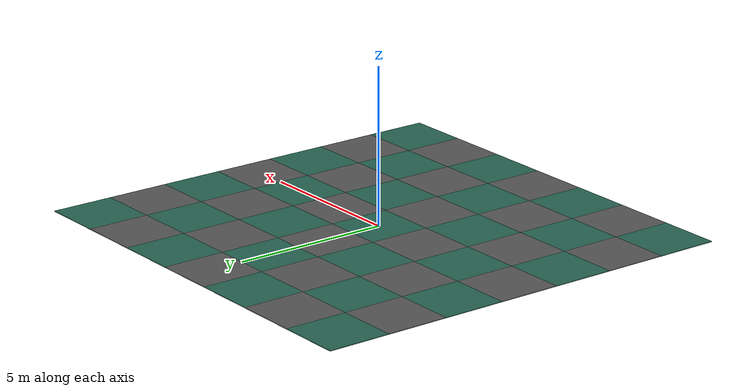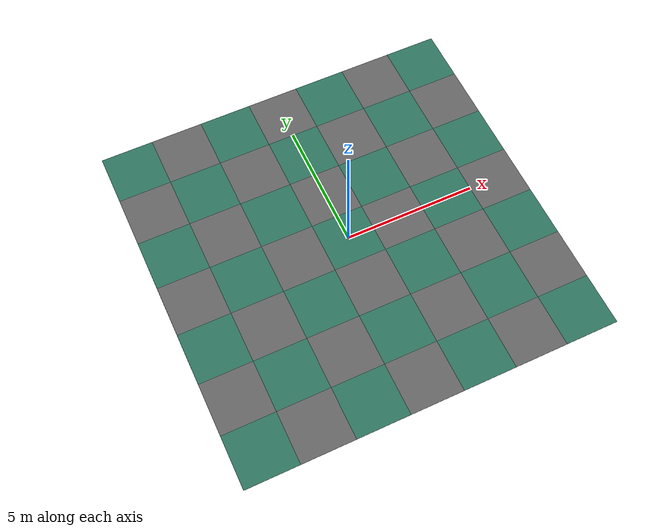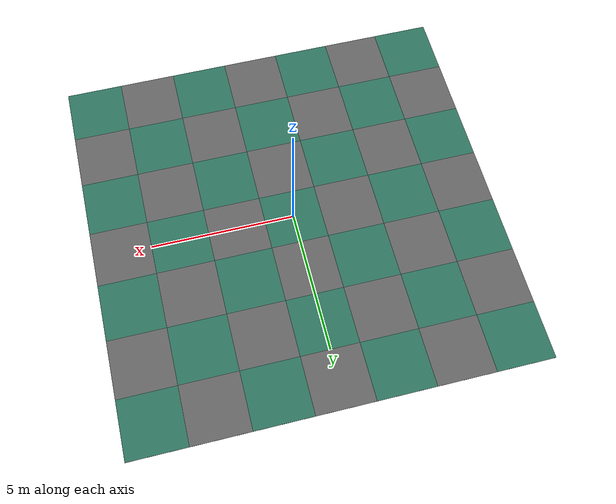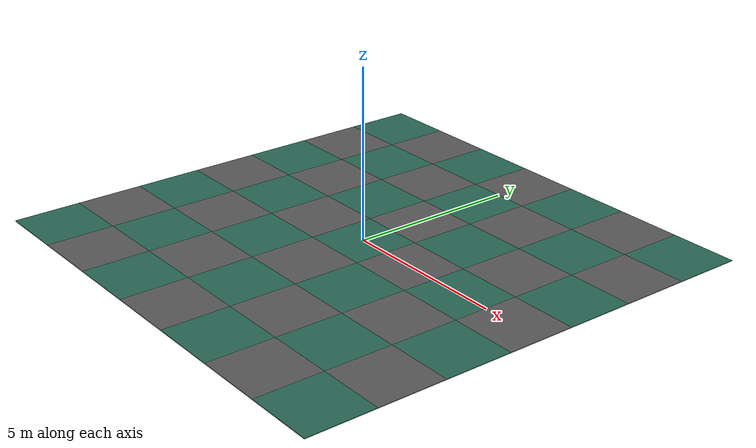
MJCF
<mujoco model="friction_floor_1">
  <compiler angle="radian" />
  <asset>
    <texture name='a' builtin="gradient" height="100" rgb1="1 1 1" rgb2="0 0 0" type="skybox" width="100"/>
    <texture name="texplane0" type="2d" builtin="checker" rgb1="0.14 0.83 0.43" rgb2="0.23 0.09 0.33" width="100" height="100" mark="cross" markrgb=".8 .8 .8"/>
    <texture name="texplane1" type="2d" builtin="checker" rgb1="0 0 0" rgb2="0.8 0.8 0.8" width="100" height="100" mark="cross" markrgb=".8 .8 .8"/>
    <material name="matplane0" reflectance="0.3" texture="texplane0" texrepeat="3 3" texuniform="true"/>
    <material name="matplane1" reflectance="0.3" texture="texplane1" texrepeat="3 3" texuniform="true"/>
  </asset>
  <visual>
    <headlight ambient="0.6 0.6 0.6" diffuse="0.5 0.5 0.5" specular="0.2 0.2 0.2"/>
    <map znear="0.001" />
  </visual>
  <worldbody>
  	<!-- Floor XY -->
    <geom contype="1" friction="1 0 0.001" name="floor+0+0" pos="0 0 0" euler="0 0 0" size="1 1 0.01" type="box" material="matplane0" condim="6"/>

    <geom contype="1" friction="1 0 0.02" name="floor+2+0" pos="2 0 0" euler="0 0 0" size="1 1 0.01" type="box" material="matplane1" condim="6"/>
    <geom contype="1" friction="1 0 0.001" name="floor+2+2" pos="2 2 0" euler="0 0 0" size="1 1 0.01" type="box" material="matplane0" condim="6"/>
    <geom contype="1" friction="1 0 0.02" name="floor+0+2" pos="0 2 0" euler="0 0 0" size="1 1 0.01" type="box" material="matplane1" condim="6"/>
    <geom contype="1" friction="1 0 0.001" name="floor-2-2" pos="-2 -2 0" euler="0 0 0" size="1 1 0.01" type="box" material="matplane0" condim="6"/>
    <geom contype="1" friction="1 0 0.02" name="floor+0-2" pos="0 -2 0" euler="0 0 0" size="1 1 0.01" type="box" material="matplane1" condim="6"/>
    <geom contype="1" friction="1 0 0.001" name="floor-2+2" pos="-2 2 0" euler="0 0 0" size="1 1 0.01" type="box" material="matplane0" condim="6"/>
    <geom contype="1" friction="1 0 0.02" name="floor-2+0" pos="-2 0 0" euler="0 0 0" size="1 1 0.01" type="box" material="matplane1" condim="6"/>
    <geom contype="1" friction="1 0 0.001" name="floor+2-2" pos="2 -2 0" euler="0 0 0" size="1 1 0.01" type="box" material="matplane0" condim="6"/>

    <geom contype="1" friction="1 0 0.001" name="floor-4-4" pos="-4 -4 0" euler="0 0 0" size="1 1 0.01" type="box" material="matplane0" condim="6"/>
    <geom contype="1" friction="1 0 0.001" name="floor+0-4" pos="0 -4 0" euler="0 0 0" size="1 1 0.01" type="box" material="matplane0" condim="6"/>
    <geom contype="1" friction="1 0 0.001" name="floor+4-4" pos="4 -4 0" euler="0 0 0" size="1 1 0.01" type="box" material="matplane0" condim="6"/>
    <geom contype="1" friction="1 0 0.001" name="floor+4-0" pos="4 -0 0" euler="0 0 0" size="1 1 0.01" type="box" material="matplane0" condim="6"/>
    <geom contype="1" friction="1 0 0.001" name="floor-4-0" pos="-4 -0 0" euler="0 0 0" size="1 1 0.01" type="box" material="matplane0" condim="6"/>
    <geom contype="1" friction="1 0 0.001" name="floor+4+4" pos="+4 +4 0" euler="0 0 0" size="1 1 0.01" type="box" material="matplane0" condim="6"/>
    <geom contype="1" friction="1 0 0.001" name="floor+0+4" pos="+0 4 0" euler="0 0 0" size="1 1 0.01" type="box" material="matplane0" condim="6"/>
    <geom contype="1" friction="1 0 0.001" name="floor-4+4" pos="-4 4 0" euler="0 0 0" size="1 1 0.01" type="box" material="matplane0" condim="6"/>

    <geom contype="1" friction="1 0 0.02" name="floor-4+2" pos="-4 2 0" euler="0 0 0" size="1 1 0.01" type="box" material="matplane1" condim="6"/>
    <geom contype="1" friction="1 0 0.02" name="floor-4-2" pos="-4 -2 0" euler="0 0 0" size="1 1 0.01" type="box" material="matplane1" condim="6"/>
    <geom contype="1" friction="1 0 0.02" name="floor+4-2" pos="+4 -2 0" euler="0 0 0" size="1 1 0.01" type="box" material="matplane1" condim="6"/>
    <geom contype="1" friction="1 0 0.02" name="floor+4+2" pos="+4 2 0" euler="0 0 0" size="1 1 0.01" type="box" material="matplane1" condim="6"/>
    <geom contype="1" friction="1 0 0.02" name="floor+2+4" pos="+2 4 0" euler="0 0 0" size="1 1 0.01" type="box" material="matplane1" condim="6"/>
    <geom contype="1" friction="1 0 0.02" name="floor-2+4" pos="-2 4 0" euler="0 0 0" size="1 1 0.01" type="box" material="matplane1" condim="6"/>
    <geom contype="1" friction="1 0 0.02" name="floor-2-4" pos="-2 -4 0" euler="0 0 0" size="1 1 0.01" type="box" material="matplane1" condim="6"/>
    <geom contype="1" friction="1 0 0.02" name="floor+2-4" pos="2 -4 0" euler="0 0 0" size="1 1 0.01" type="box" material="matplane1" condim="6"/>

    <geom contype="1" friction="1 0 0.001" name="floor-2+6" pos="-2 6 0" euler="0 0 0" size="1 1 0.01" type="box" material="matplane0" condim="6"/>
    <geom contype="1" friction="1 0 0.001" name="floor+2+6" pos="+2 6 0" euler="0 0 0" size="1 1 0.01" type="box" material="matplane0" condim="6"/>
    <geom contype="1" friction="1 0 0.001" name="floor+6+6" pos="+6 6 0" euler="0 0 0" size="1 1 0.01" type="box" material="matplane0" condim="6"/>
    <geom contype="1" friction="1 0 0.001" name="floor-6+6" pos="-6 6 0" euler="0 0 0" size="1 1 0.01" type="box" material="matplane0" condim="6"/>
    <geom contype="1" friction="1 0 0.001" name="floor-2-6" pos="-2 -6 0" euler="0 0 0" size="1 1 0.01" type="box" material="matplane0" condim="6"/>
    <geom contype="1" friction="1 0 0.001" name="floor+2-6" pos="+2 -6 0" euler="0 0 0" size="1 1 0.01" type="box" material="matplane0" condim="6"/>
    <geom contype="1" friction="1 0 0.001" name="floor+6-6" pos="+6 -6 0" euler="0 0 0" size="1 1 0.01" type="box" material="matplane0" condim="6"/>
    <geom contype="1" friction="1 0 0.001" name="floor-6-6" pos="-6 -6 0" euler="0 0 0" size="1 1 0.01" type="box" material="matplane0" condim="6"/>
    <geom contype="1" friction="1 0 0.001" name="floor-6-2" pos="-6 -2 0" euler="0 0 0" size="1 1 0.01" type="box" material="matplane0" condim="6"/>
    <geom contype="1" friction="1 0 0.001" name="floor-6+2" pos="-6 +2 0" euler="0 0 0" size="1 1 0.01" type="box" material="matplane0" condim="6"/>
    <geom contype="1" friction="1 0 0.001" name="floor+6-2" pos="+6 -2 0" euler="0 0 0" size="1 1 0.01" type="box" material="matplane0" condim="6"/>
    <geom contype="1" friction="1 0 0.001" name="floor+6+2" pos="+6 +2 0" euler="0 0 0" size="1 1 0.01" type="box" material="matplane0" condim="6"/>

    <geom contype="1" friction="1 0 0.02" name="floor+6-0" pos="+6 -0 0" euler="0 0 0" size="1 1 0.01" type="box" material="matplane1" condim="6"/>
    <geom contype="1" friction="1 0 0.02" name="floor+6-4" pos="+6 -4 0" euler="0 0 0" size="1 1 0.01" type="box" material="matplane1" condim="6"/>
    <geom contype="1" friction="1 0 0.02" name="floor+6+4" pos="+6 +4 0" euler="0 0 0" size="1 1 0.01" type="box" material="matplane1" condim="6"/>
    <geom contype="1" friction="1 0 0.02" name="floor-6-0" pos="-6 -0 0" euler="0 0 0" size="1 1 0.01" type="box" material="matplane1" condim="6"/>
    <geom contype="1" friction="1 0 0.02" name="floor-6-4" pos="-6 -4 0" euler="0 0 0" size="1 1 0.01" type="box" material="matplane1" condim="6"/>
    <geom contype="1" friction="1 0 0.02" name="floor-6+4" pos="-6 +4 0" euler="0 0 0" size="1 1 0.01" type="box" material="matplane1" condim="6"/>
    <geom contype="1" friction="1 0 0.02" name="floor-0+6" pos="-0 +6 0" euler="0 0 0" size="1 1 0.01" type="box" material="matplane1" condim="6"/>
    <geom contype="1" friction="1 0 0.02" name="floor-4+6" pos="-4 +6 0" euler="0 0 0" size="1 1 0.01" type="box" material="matplane1" condim="6"/>
    <geom contype="1" friction="1 0 0.02" name="floor+4+6" pos="+4 +6 0" euler="0 0 0" size="1 1 0.01" type="box" material="matplane1" condim="6"/>
    <geom contype="1" friction="1 0 0.02" name="floor-0-6" pos="-0 -6 0" euler="0 0 0" size="1 1 0.01" type="box" material="matplane1" condim="6"/>
    <geom contype="1" friction="1 0 0.02" name="floor-4-6" pos="-4 -6 0" euler="0 0 0" size="1 1 0.01" type="box" material="matplane1" condim="6"/>
    <geom contype="1" friction="1 0 0.02" name="floor+4-6" pos="+4 -6 0" euler="0 0 0" size="1 1 0.01" type="box" material="matplane1" condim="6"/>

  </worldbody>
</mujoco>
